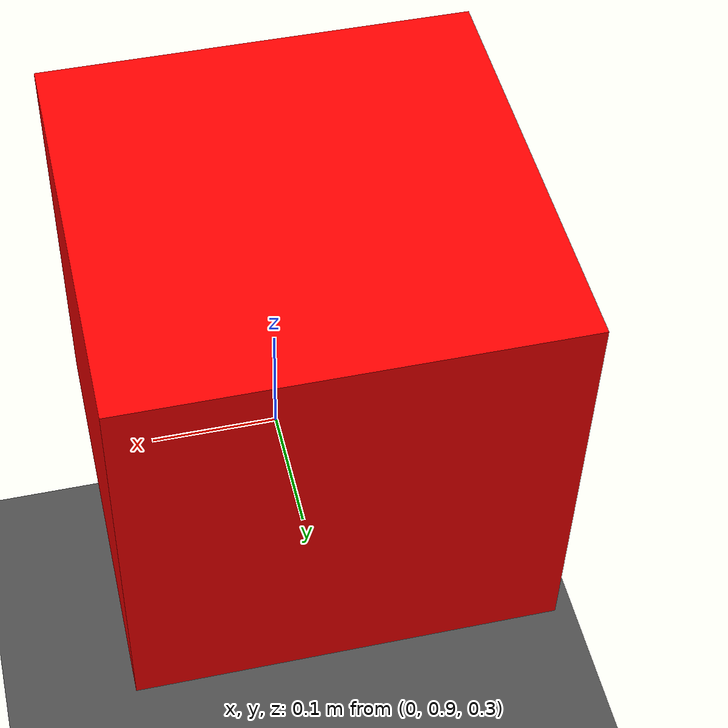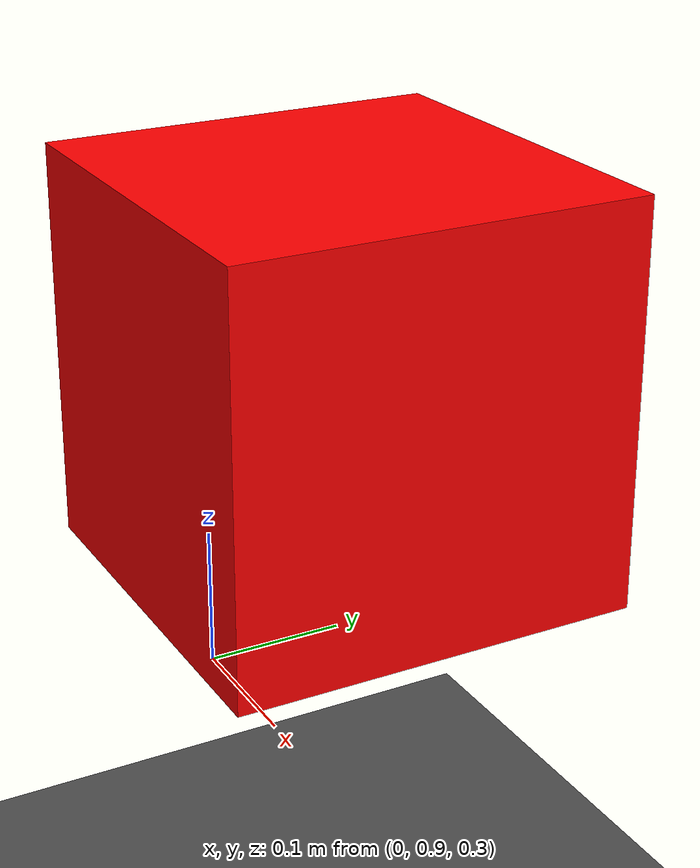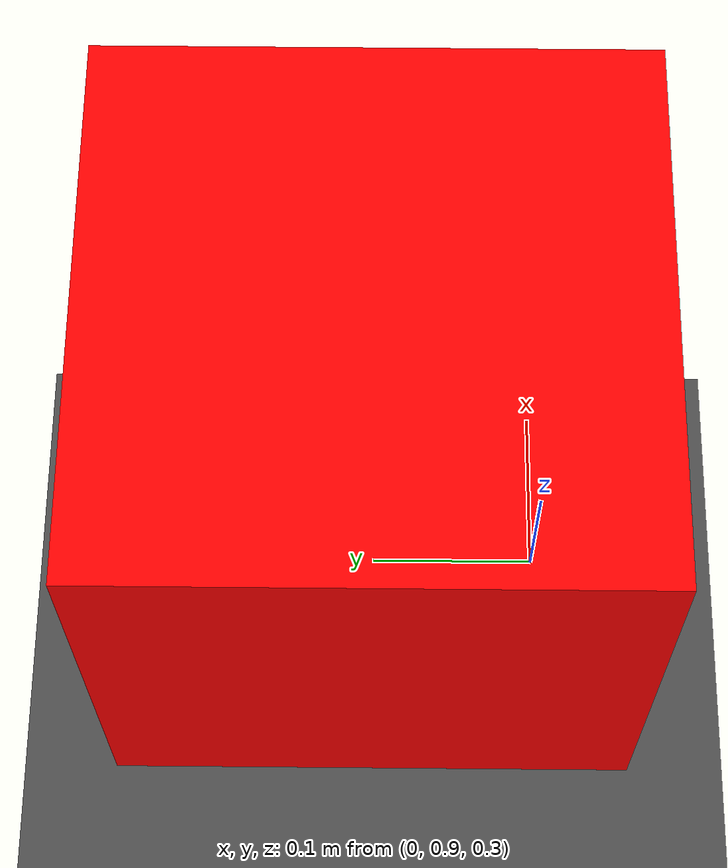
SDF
<?xml version="1.0" ?>
<sdf version='1.4'>
  <world name='default'>

    <physics type='ode'>
      <max_step_size>0.001</max_step_size>
      <real_time_factor>1</real_time_factor>
      <real_time_update_rate>1000</real_time_update_rate>
      <gravity>0 0 -9.8</gravity>
    </physics>

    <spherical_coordinates>
      <surface_model>EARTH_WGS84</surface_model>
      <latitude_deg>0</latitude_deg>
      <longitude_deg>0</longitude_deg>
      <elevation>0</elevation>
      <heading_deg>0</heading_deg>
    </spherical_coordinates>

    <!-- A global light source -->
   <scene>
      <sky>
        <clouds>
          <speed>12</speed>
        </clouds>
      </sky>
   </scene>

    <include>
      <uri>model://sun</uri>
    </include>

    <model name='asphalt_plane'>
      <static>1</static>
      <link name='link'>
        <collision name='collision'>
          <geometry>
            <box>
              <size>20 20 0.1</size>
            </box>
          </geometry>
          <max_contacts>10</max_contacts>
          <surface>
            <contact>
              <ode/>
            </contact>
            <bounce/>
          </surface>
        </collision>
        <visual name='visual'>
          <cast_shadows>0</cast_shadows>
          <geometry>
            <box>
              <size>20 20 0.1</size>
            </box>
          </geometry>
          <material>
            <script>
              <uri>model://asphalt_plane/materials/scripts</uri>
              <uri>model://asphalt_plane/materials/textures</uri>
              <name>vrc/asphalt</name>
            </script>
          </material>
        </visual>
        <self_collide>0</self_collide>
        <kinematic>0</kinematic>
        <gravity>1</gravity>
      </link>
    </model>

    <model name='object'>
      <pose>0 1 0.5 0 0 0</pose>
      <link name='object_link'>
        <collision name='collision'>
          <geometry>
            <box>
              <size>0.3 0.3 0.3</size>
            </box>
          </geometry>
          <max_contacts>10</max_contacts>
          <surface>
            <contact>
              <ode/>
            </contact>
            <bounce/>
          </surface>
        </collision>
        <visual name='visual'>
          <cast_shadows>0</cast_shadows>
          <geometry>
            <box>
              <size>0.3 0.3 0.3</size>
            </box>
          </geometry>
          <material>
            <ambient>1.0 0.0 0.0 1</ambient>
            <diffuse>1.0 0.0 0.0 1</diffuse>
            <specular>0.01 0.01 0.01 1</specular>
            <emissive>0 0 0 1</emissive>
          </material>
        </visual>
        <self_collide>0</self_collide>
        <kinematic>0</kinematic>
        <gravity>1</gravity>
      </link>
    </model>
    <gazebo reference='object'>
      <mu1>0.5</mu1>
      <mu2>0.5</mu2>
    </gazebo>

  </world>
</sdf>
